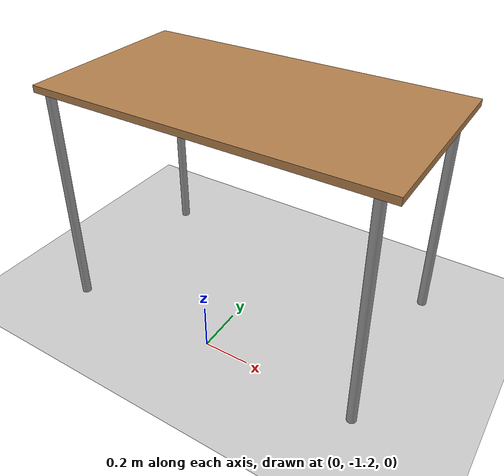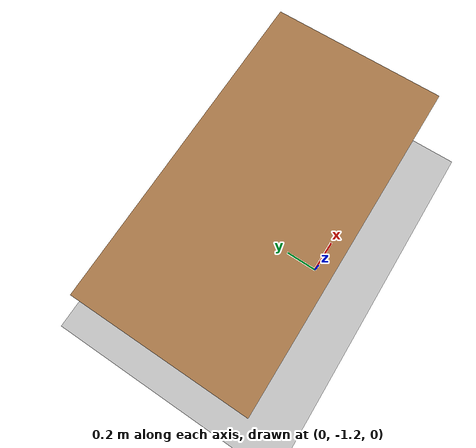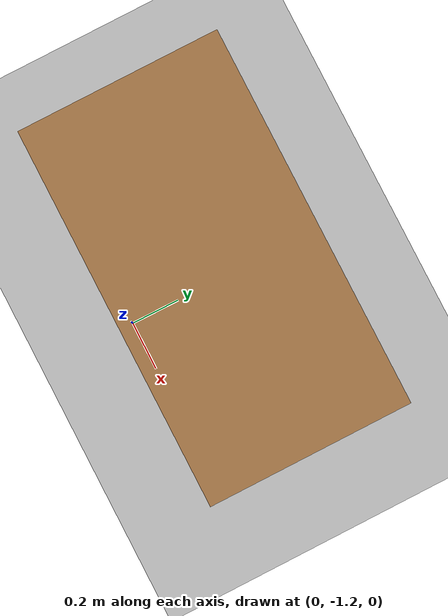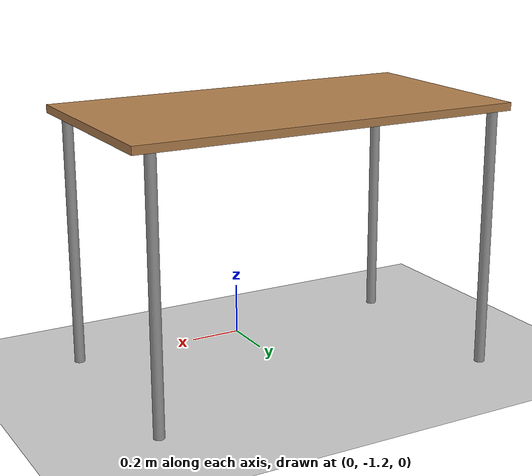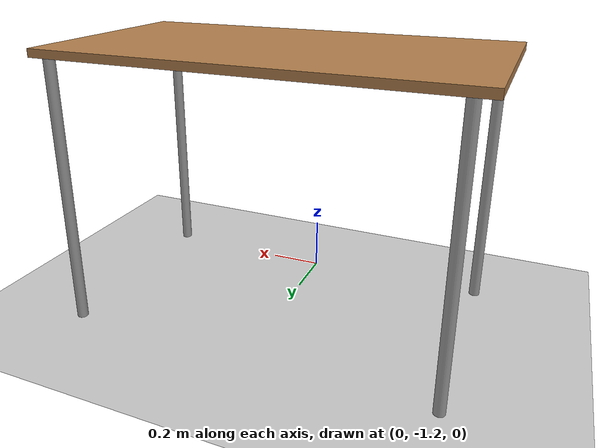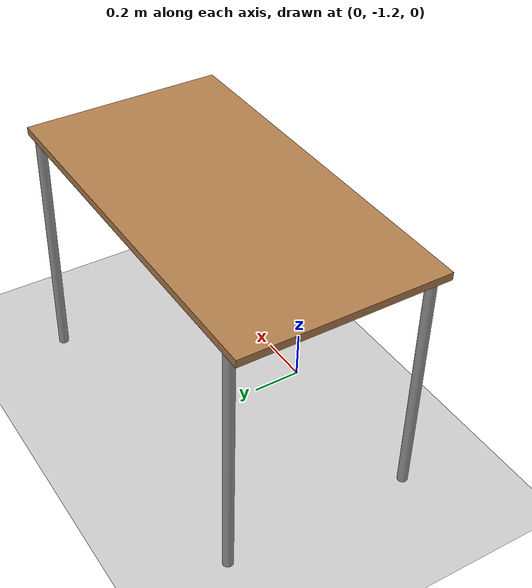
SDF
<?xml version="1.0" ?>
<sdf version="1.6">
  <world name="robotics_lab">

    <!-- LIGHTING - Işıklandırma                        -->

    <!-- Ana güneş ışığı -->
    <include>
      <uri>model://sun</uri>
    </include>

    <!-- Ek spot ışık (lab ortamı için) -->
    <light name="lab_light_1" type="point">
      <pose>0 0 3 0 0 0</pose>
      <diffuse>0.8 0.8 0.8 1</diffuse>
      <specular>0.2 0.2 0.2 1</specular>
      <attenuation>
        <range>20</range>
        <constant>0.5</constant>
        <linear>0.01</linear>
        <quadratic>0.001</quadratic>
      </attenuation>
      <cast_shadows>true</cast_shadows>
    </light>

    <!-- GROUND - Zemin                                 -->

    <!-- Varsayılan zemin (Blender modeli eklenince değiştirilecek) -->
    <include>
      <uri>model://ground_plane</uri>
    </include>

    <!-- WORKBENCH - Çalışma Masası (xArm 5 monte)      -->

    <!-- Varsayılan masa (Gazebo default table) -->
    <include>
      <uri>model://table</uri>
      <name>xarm_workbench</name>
      <pose>0.0 -0.84 0 0 0 0</pose>
    </include>

    <!-- LABORATORY EQUIPMENT - Lab Ekipmanları         -->

    <!-- WALLS - Duvarlar (Opsiyonel)                   -->

    <!-- PHYSICS - Fizik Ayarları                       -->

    <physics type="ode">
      <!-- Simülasyon adım boyutu (saniye) -->
      <max_step_size>0.001</max_step_size>

      <!-- Gerçek zamanlı oran (1.0 = gerçek zaman) -->
      <real_time_factor>1</real_time_factor>

      <!-- Güncelleme hızı (Hz) -->
      <real_time_update_rate>1000</real_time_update_rate>

      <!-- Yerçekimi (m/s²) -->
      <!-- Not: xArm simülasyonu gravity=0 kullanıyor, gerekirse değiştir -->
      <gravity>0 0 0</gravity>
    </physics>

    <!-- SCENE - Sahne Ayarları                         -->

    <scene>
      <ambient>0.4 0.4 0.4 1</ambient>
      <background>0.7 0.7 0.7 1</background>
      <shadows>true</shadows>
    </scene>

    <!-- GUI - Kamera Başlangıç Pozisyonu               -->

    <gui fullscreen='0'>
      <camera name='user_camera'>
        <pose>3.0 -3.0 2.5 0 0.5 2.35</pose>
        <view_controller>orbit</view_controller>
      </camera>
    </gui>

  </world>
</sdf>

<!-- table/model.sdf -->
<sdf version="1.5">
  <model name="table">
    <static>true</static>
    <link name="link">
      <collision name="surface">
        <pose>0 0 1.0 0 0 0</pose>
        <geometry>
          <box>
            <size>1.5 0.8 0.03</size>
          </box>
        </geometry>
        <surface>
          <friction>
            <ode>
              <mu>0.6</mu>
              <mu2>0.6</mu2>
            </ode>
          </friction>
        </surface>
      </collision>
      <visual name="visual1">
        <pose>0 0 1.0 0 0 0</pose>
        <geometry>
          <box>
            <size>1.5 0.8 0.03</size>
          </box>
        </geometry>
        <material>
          <script>
            <uri>model://media/materials/scripts/gazebo.material</uri>
            <name>Gazebo/Wood</name>
          </script>
        </material>
      </visual>
      <collision name="front_left_leg">
        <pose>0.68 0.38 0.5 0 0 0</pose>
        <geometry>
          <cylinder>
            <radius>0.02</radius>
            <length>1.0</length>
          </cylinder>
        </geometry>
      </collision>
      <visual name="front_left_leg">
        <pose>0.68 0.38 0.5 0 0 0</pose>
        <geometry>
          <cylinder>
            <radius>0.02</radius>
            <length>1.0</length>
          </cylinder>
        </geometry>
        <material>
          <script>
            <uri>model://media/materials/scripts/gazebo.material</uri>
            <name>Gazebo/Grey</name>
          </script>
        </material>
      </visual>
      <collision name="front_right_leg">
        <pose>0.68 -0.38 0.5 0 0 0</pose>
        <geometry>
          <cylinder>
            <radius>0.02</radius>
            <length>1.0</length>
          </cylinder>
        </geometry>
      </collision>
      <visual name="front_right_leg">
        <pose>0.68 -0.38 0.5 0 0 0</pose>
        <geometry>
          <cylinder>
            <radius>0.02</radius>
            <length>1.0</length>
          </cylinder>
        </geometry>
        <material>
          <script>
            <uri>model://media/materials/scripts/gazebo.material</uri>
            <name>Gazebo/Grey</name>
          </script>
        </material>
      </visual>
      <collision name="back_right_leg">
        <pose>-0.68 -0.38 0.5 0 0 0</pose>
        <geometry>
          <cylinder>
            <radius>0.02</radius>
            <length>1.0</length>
          </cylinder>
        </geometry>
      </collision>
      <visual name="back_right_leg">
        <pose>-0.68 -0.38 0.5 0 0 0</pose>
        <geometry>
          <cylinder>
            <radius>0.02</radius>
            <length>1.0</length>
          </cylinder>
        </geometry>
        <material>
          <script>
            <uri>model://media/materials/scripts/gazebo.material</uri>
            <name>Gazebo/Grey</name>
          </script>
        </material>
      </visual>
      <collision name="back_left_leg">
        <pose>-0.68 0.38 0.5 0 0 0</pose>
        <geometry>
          <cylinder>
            <radius>0.02</radius>
            <length>1.0</length>
          </cylinder>
        </geometry>
      </collision>
      <visual name="back_left_leg">
        <pose>-0.68 0.38 0.5 0 0 0</pose>
        <geometry>
          <cylinder>
            <radius>0.02</radius>
            <length>1.0</length>
          </cylinder>
        </geometry>
        <material>
          <script>
            <uri>model://media/materials/scripts/gazebo.material</uri>
            <name>Gazebo/Grey</name>
          </script>
        </material>
      </visual>
    </link>
  </model>
</sdf>
